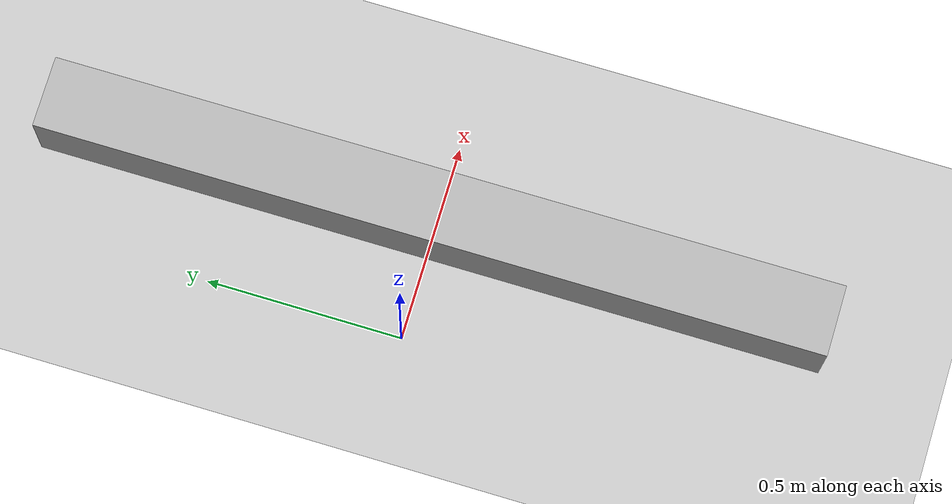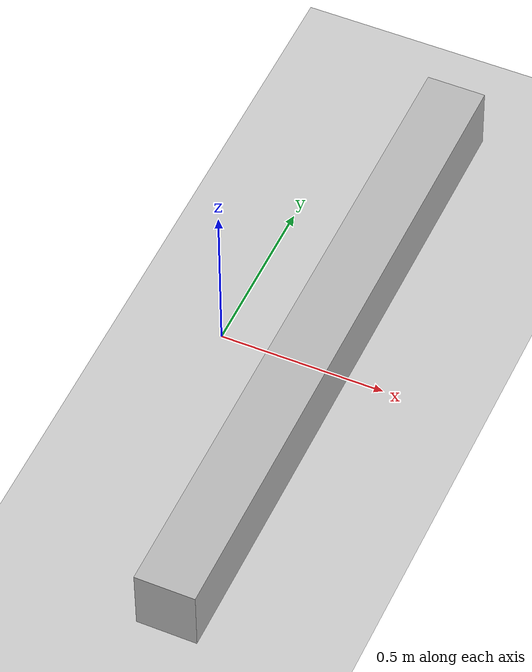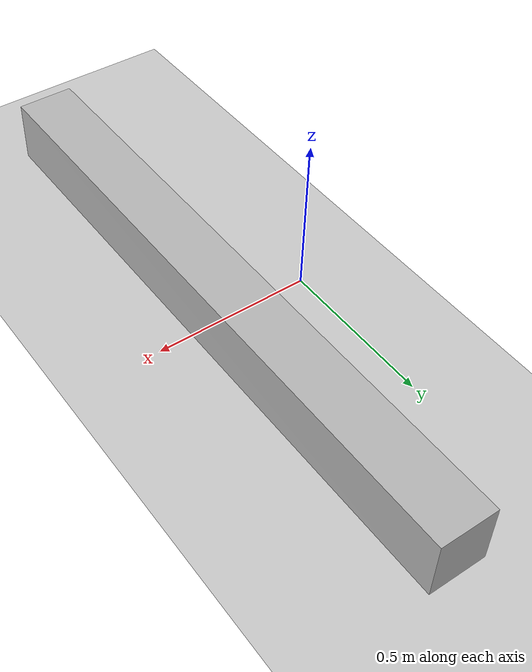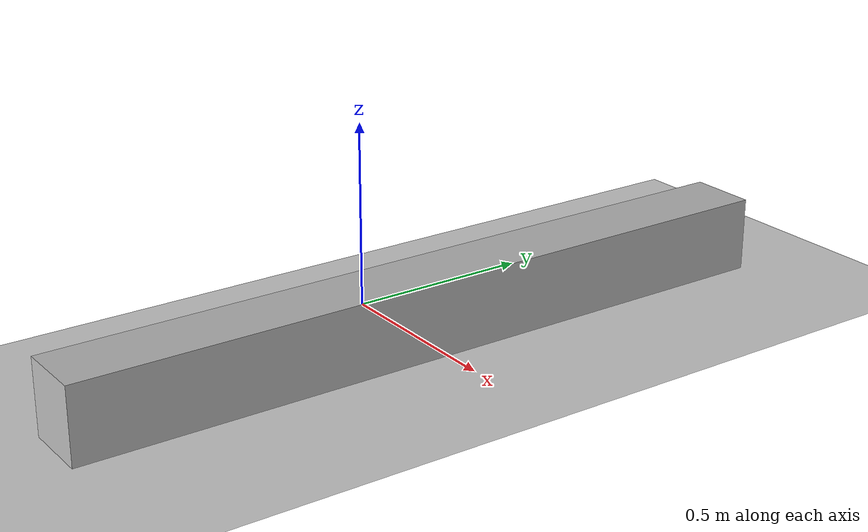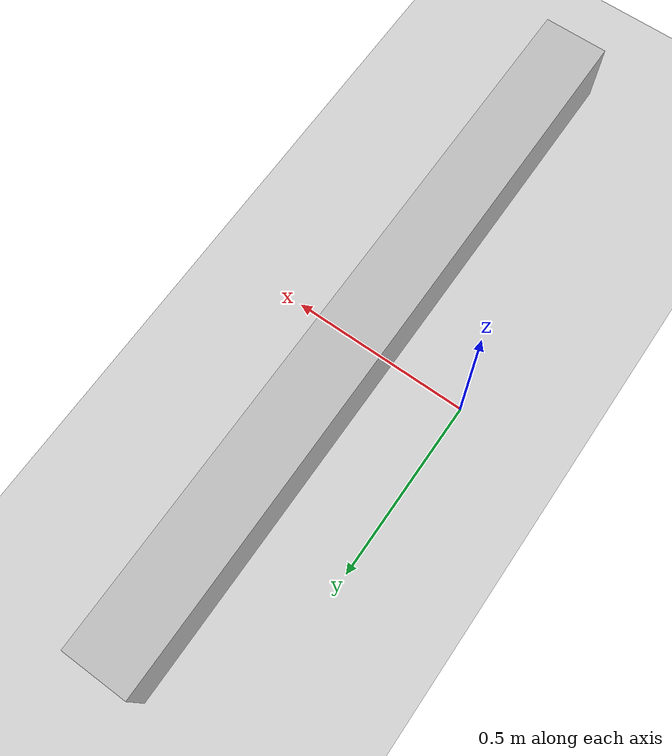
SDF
<sdf version="1.5">
 <world name="default">
  <light name="sun" type="directional">
   <pose>0 0 10 0 -0 0</pose>
   <diffuse>0.8 0.8 0.8 1</diffuse>
   <specular>0.2 0.2 0.2 1</specular>
   <attenuation>
    <range>1000</range>
    <constant>0.9</constant>
    <linear>0.01</linear>
    <quadratic>0.001</quadratic>
   </attenuation>
   <direction>-0.5 0.1 -0.9</direction>
  </light>
  <model name="ground_plane">
   <static>1</static>
   <link name="link">
    <collision name="collision">
     <geometry><plane><normal>0 0 1</normal><size>100 100</size></plane></geometry>
     <surface><friction><ode><mu>100</mu><mu2>50</mu2></ode></friction></surface>
    </collision>
    <visual name="visual">
     <cast_shadows>0</cast_shadows>
     <geometry><plane><normal>0 0 1</normal><size>100 100</size></plane></geometry>
     <material>
      <script><uri>file://media/materials/scripts/gazebo.material</uri><name>Gazebo/Grey</name></script>
     </material>
    </visual>
    <velocity_decay><linear>0</linear><angular>0</angular></velocity_decay>
   </link>
  </model>
  <model name="drc_qual4_block">
   <link name="drc_qual4_block_link">
    <pose>0.3 0 0 0 0 0</pose>
    <collision name="drc_qual4_block_collision">
     <geometry><mesh><uri>file://drc_qual4_block.stl</uri><scale>1 1 1</scale></mesh></geometry>
    </collision>
    <visual name="drc_qual4_block">
     <geometry><mesh><uri>file://drc_qual4_block.stl</uri><scale>1 1 1</scale></mesh></geometry>
     <cast_shadows>false</cast_shadows>
    </visual>
   </link>
   <static>true</static>
  </model>
  <physics type="ode">
   <gravity>0 0 -9.81</gravity>
   <simbody>
    <accuracy>0.005</accuracy>
    <max_transient_velocity>0.005</max_transient_velocity>
    <contact><stiffness>1e8</stiffness><dissipation>20.0</dissipation></contact>
   </simbody>
   <ode>
    <solver>
     <use_dynamic_moi_rescaling>true</use_dynamic_moi_rescaling>
     <type>quick</type>
     <iters>200</iters>
     <sor>1.0</sor>
    </solver>
    <constraints>
     <cfm>0.0</cfm>
     <erp>0.2</erp>
     <contact_max_correcting_vel>100.0</contact_max_correcting_vel>
     <contact_surface_layer>0.0</contact_surface_layer>
    </constraints>
   </ode>
   <real_time_update_rate>1000</real_time_update_rate>
   <max_step_size>0.001</max_step_size>
  </physics>
  <scene><ambient>0.4 0.4 0.4 1</ambient><background>0.7 0.7 0.7 1</background><shadows>1</shadows></scene>
  <spherical_coordinates>
   <surface_model>EARTH_WGS84</surface_model>
   <latitude_deg>0</latitude_deg>
   <longitude_deg>0</longitude_deg>
   <elevation>0</elevation>
   <heading_deg>0</heading_deg>
  </spherical_coordinates>
 </world>
</sdf>
